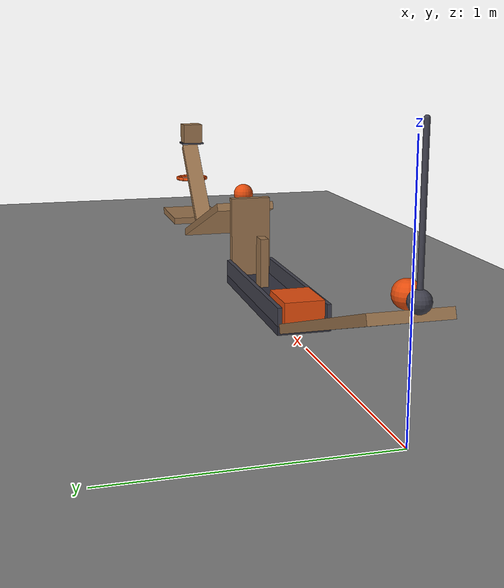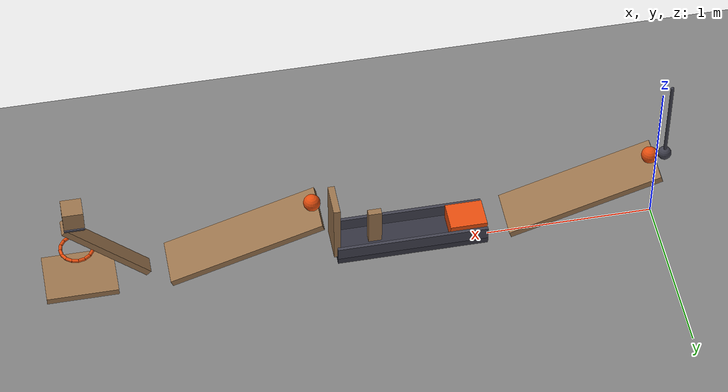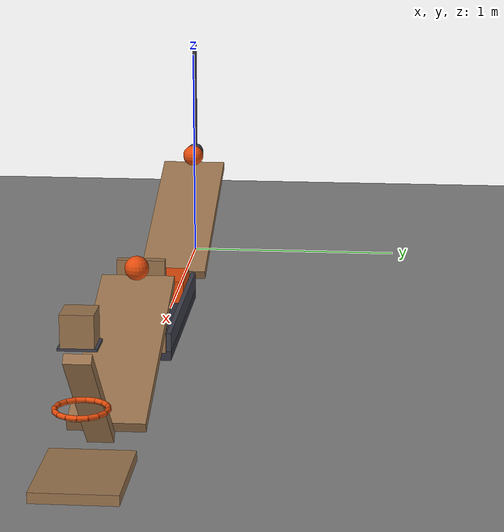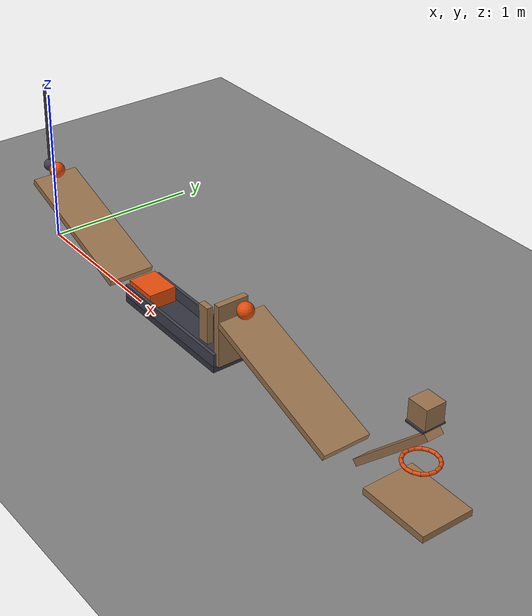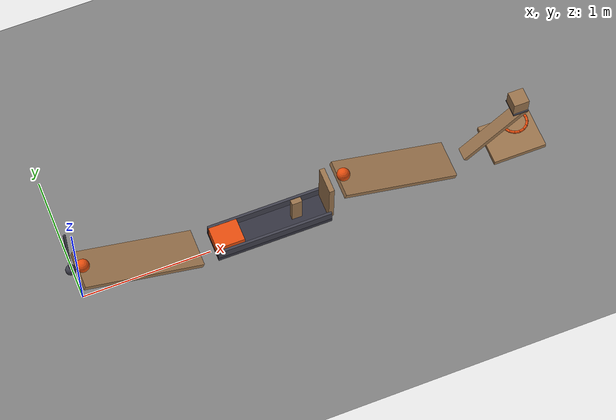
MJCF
<mujoco model="gravity_chain_with_feasibility_checks">
  <compiler angle="radian"/>
  <option timestep="0.002"/>
  <worldbody>
    <geom name="floor" type="plane" size="12 12 0.1" friction="0.68 0 0"/>
    <body name="ramp1">
      <geom name="ramp1" type="box" pos="0.44912 0 0.285735" size="0.474999 0.15 0.02" euler="0 0.331614 0" friction="0.68 0 0" solref="0.01 1" rgba="0.6 0.45 0.3 1"/>
    </body>
    <body name="ball1" pos="0.0417002 0 0.500055">
      <freejoint/>
      <geom name="ball1" type="sphere" pos="0 0 0" size="0.05" mass="0.2" condim="6" friction="0.68 0 0" solref="0.01 1" rgba="0.9 0.3 0.05 1"/>
    </body>
    <body name="pendulum1" pos="-0.0482998 0 1.05005">
      <joint name="pendulum1_hinge" type="hinge" pos="0 0 0" axis="0 1 0" limited="true" range="-0.174533 1.0472" damping="0.04"/>
      <geom name="pendulum1" type="sphere" pos="0 0 -0.55" size="0.04" mass="0.35" friction="0.68 0 0" solref="0.01 1" rgba="0.25 0.25 0.3 1"/>
      <geom name="pendulum rod" type="capsule" size="0.01" fromto="0 0 0 0 0 -0.51" mass="0.05" friction="0.68 0 0" solref="0.01 1" rgba="0.25 0.25 0.3 1"/>
    </body>
    <body name="cart track">
      <geom name="cart track" type="box" pos="1.47475 0 0.08" size="0.45 0.12 0.02" friction="0.68 0 0" solref="0.01 1" rgba="0.2 0.2 0.25 1"/>
    </body>
    <body name="cart left guide">
      <geom name="cart left guide" type="box" pos="1.47475 0.11 0.14" size="0.45 0.01 0.04" friction="0.68 0 0" solref="0.01 1" rgba="0.25 0.25 0.3 1"/>
    </body>
    <body name="cart right guide">
      <geom name="cart right guide" type="box" pos="1.47475 -0.11 0.14" size="0.45 0.01 0.04" friction="0.68 0 0" solref="0.01 1" rgba="0.25 0.25 0.3 1"/>
    </body>
    <body name="cart1" pos="1.13475 0 0.15">
      <freejoint/>
      <geom name="cart1" type="box" pos="0 0 0" size="0.11 0.09 0.05" mass="0.5" friction="0.68 0 0" solref="0.01 1" rgba="0.9 0.3 0.05 1"/>
    </body>
    <body name="domino1" pos="1.68475 0 0.22">
      <freejoint/>
      <geom name="domino1" type="box" pos="0 0 0" size="0.04 0.02 0.12" mass="0.25" friction="0.68 0 0" solref="0.01 1" rgba="0.6 0.45 0.3 1"/>
    </body>
    <body name="flap1" pos="1.92475 0 0.5">
      <joint name="flap1_hinge" type="hinge" pos="0 0 0" axis="0 1 0" limited="true" range="-1.13446 0" damping="0.04"/>
      <geom name="flap1" type="box" pos="0 0 -0.2" size="0.02 0.1 0.2" mass="0.3" friction="0.68 0 0" solref="0.01 1" rgba="0.6 0.45 0.3 1"/>
    </body>
    <body name="ramp2">
      <geom name="ramp2" type="box" pos="2.46216 0 0.285735" size="0.474999 0.15 0.02" euler="0 0.331614 0" friction="0.68 0 0" solref="0.01 1" rgba="0.6 0.45 0.3 1"/>
    </body>
    <body name="ball2" pos="2.05474 0 0.500055">
      <freejoint/>
      <geom name="ball2" type="sphere" pos="0 0 0" size="0.05" mass="0.2" condim="6" friction="0.68 0 0" solref="0.01 1" rgba="0.9 0.3 0.05 1"/>
    </body>
    <body name="seesaw1" pos="3.26174 0 0.36567">
      <joint name="seesaw1_hinge" type="hinge" pos="0 0 0" axis="0 1 0" limited="true" range="-0.698132 0" damping="0.04"/>
      <geom name="seesaw1" type="box" pos="0 0 0" size="0.325 0.05 0.02" euler="0 -0.785398 0" mass="0.55" friction="0.68 0 0" solref="0.01 1" rgba="0.6 0.45 0.3 1"/>
      <geom name="block seat" type="box" pos="0.16826 0 0.26154" size="0.06 0.07 0.005" mass="0.001" friction="0.68 0 0" solref="0.01 1" rgba="0.25 0.25 0.3 1"/>
    </body>
    <body name="block1" pos="3.43 0 0.69221">
      <freejoint/>
      <geom name="block1" type="box" pos="0 0 0" size="0.06 0.06 0.06" mass="0.35" friction="0.68 0 0" solref="0.01 1" rgba="0.6 0.45 0.3 1"/>
    </body>
    <body name="ring1">
      <geom name="ring1_00" type="capsule" size="0.01" fromto="3.525 0 0.39221 3.51777 0.0363549 0.39221" friction="0.68 0 0" solref="0.01 1" rgba="0.9 0.3 0.05 1"/>
      <geom name="ring1_01" type="capsule" size="0.01" fromto="3.51777 0.0363549 0.39221 3.49718 0.0671751 0.39221" friction="0.68 0 0" solref="0.01 1" rgba="0.9 0.3 0.05 1"/>
      <geom name="ring1_02" type="capsule" size="0.01" fromto="3.49718 0.0671751 0.39221 3.46635 0.0877686 0.39221" friction="0.68 0 0" solref="0.01 1" rgba="0.9 0.3 0.05 1"/>
      <geom name="ring1_03" type="capsule" size="0.01" fromto="3.46635 0.0877686 0.39221 3.43 0.095 0.39221" friction="0.68 0 0" solref="0.01 1" rgba="0.9 0.3 0.05 1"/>
      <geom name="ring1_04" type="capsule" size="0.01" fromto="3.43 0.095 0.39221 3.39365 0.0877686 0.39221" friction="0.68 0 0" solref="0.01 1" rgba="0.9 0.3 0.05 1"/>
      <geom name="ring1_05" type="capsule" size="0.01" fromto="3.39365 0.0877686 0.39221 3.36282 0.0671751 0.39221" friction="0.68 0 0" solref="0.01 1" rgba="0.9 0.3 0.05 1"/>
      <geom name="ring1_06" type="capsule" size="0.01" fromto="3.36282 0.0671751 0.39221 3.34223 0.0363549 0.39221" friction="0.68 0 0" solref="0.01 1" rgba="0.9 0.3 0.05 1"/>
      <geom name="ring1_07" type="capsule" size="0.01" fromto="3.34223 0.0363549 0.39221 3.335 1.16341e-17 0.39221" friction="0.68 0 0" solref="0.01 1" rgba="0.9 0.3 0.05 1"/>
      <geom name="ring1_08" type="capsule" size="0.01" fromto="3.335 1.16341e-17 0.39221 3.34223 -0.0363549 0.39221" friction="0.68 0 0" solref="0.01 1" rgba="0.9 0.3 0.05 1"/>
      <geom name="ring1_09" type="capsule" size="0.01" fromto="3.34223 -0.0363549 0.39221 3.36282 -0.0671751 0.39221" friction="0.68 0 0" solref="0.01 1" rgba="0.9 0.3 0.05 1"/>
      <geom name="ring1_10" type="capsule" size="0.01" fromto="3.36282 -0.0671751 0.39221 3.39365 -0.0877686 0.39221" friction="0.68 0 0" solref="0.01 1" rgba="0.9 0.3 0.05 1"/>
      <geom name="ring1_11" type="capsule" size="0.01" fromto="3.39365 -0.0877686 0.39221 3.43 -0.095 0.39221" friction="0.68 0 0" solref="0.01 1" rgba="0.9 0.3 0.05 1"/>
      <geom name="ring1_12" type="capsule" size="0.01" fromto="3.43 -0.095 0.39221 3.46635 -0.0877686 0.39221" friction="0.68 0 0" solref="0.01 1" rgba="0.9 0.3 0.05 1"/>
      <geom name="ring1_13" type="capsule" size="0.01" fromto="3.46635 -0.0877686 0.39221 3.49718 -0.0671751 0.39221" friction="0.68 0 0" solref="0.01 1" rgba="0.9 0.3 0.05 1"/>
      <geom name="ring1_14" type="capsule" size="0.01" fromto="3.49718 -0.0671751 0.39221 3.51777 -0.0363549 0.39221" friction="0.68 0 0" solref="0.01 1" rgba="0.9 0.3 0.05 1"/>
      <geom name="ring1_15" type="capsule" size="0.01" fromto="3.51777 -0.0363549 0.39221 3.525 -2.32683e-17 0.39221" friction="0.68 0 0" solref="0.01 1" rgba="0.9 0.3 0.05 1"/>
    </body>
    <body name="door1" pos="3.22 0 0.14221">
      <joint name="door1_hinge" type="hinge" pos="0 0 0" axis="0 1 0" limited="true" range="-1.13446 0" damping="0.04"/>
      <geom name="door1" type="box" pos="0.21 0 0" size="0.21 0.16 0.02" mass="0.45" friction="0.68 0 0" solref="0.01 1" rgba="0.6 0.45 0.3 1"/>
    </body>
  </worldbody>
  <keyframe>
    <key name="start" qpos="0.0417002 0 0.500055 1 0 0 0 0.959931 1.13475 0 0.15 1 0 0 0 1.68475 0 0.22 1 0 0 0 0 2.05474 0 0.500055 1 0 0 0 0 3.43 0 0.69221 1 0 0 0 0" qvel="0 0 0 0 0 0 0 0 0 0 0 0 0 0 0 0 0 0 0 0 0 0 0 0 0 0 0 0 0 0 0 0 0 0"/>
  </keyframe>
</mujoco>
